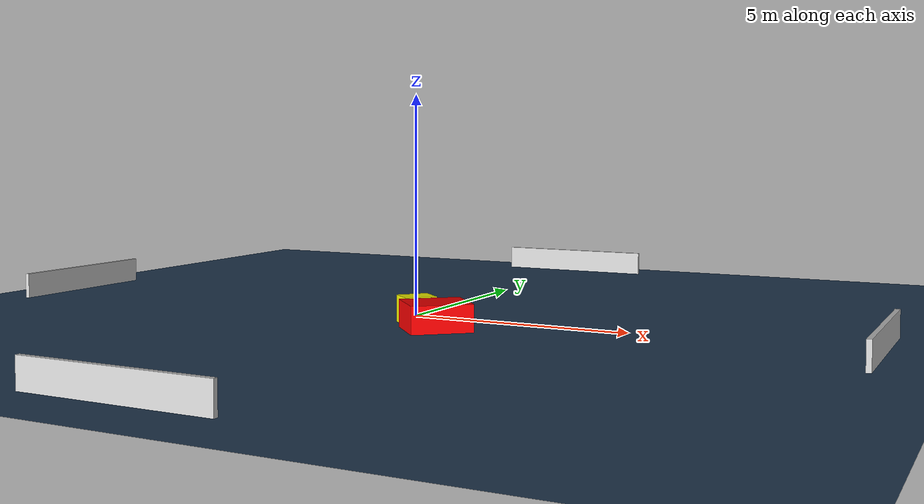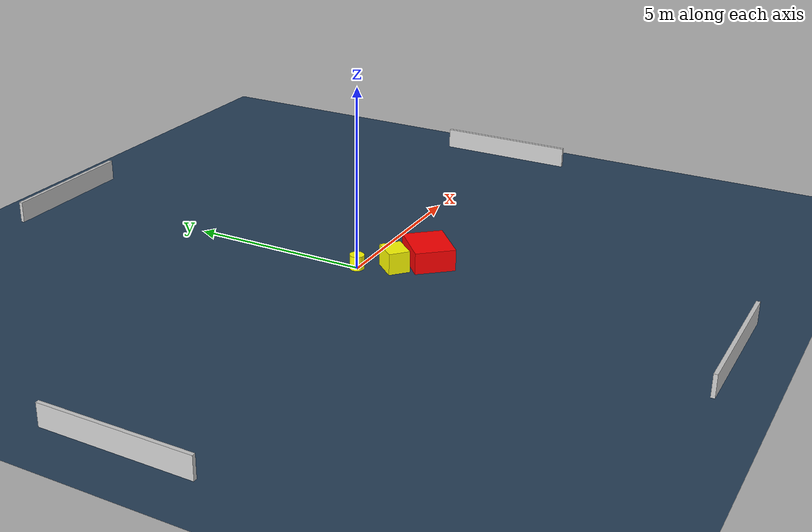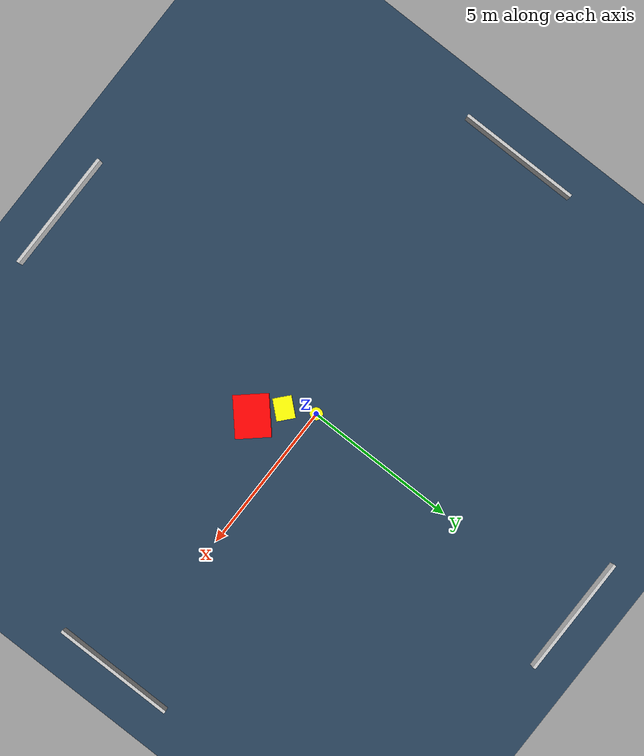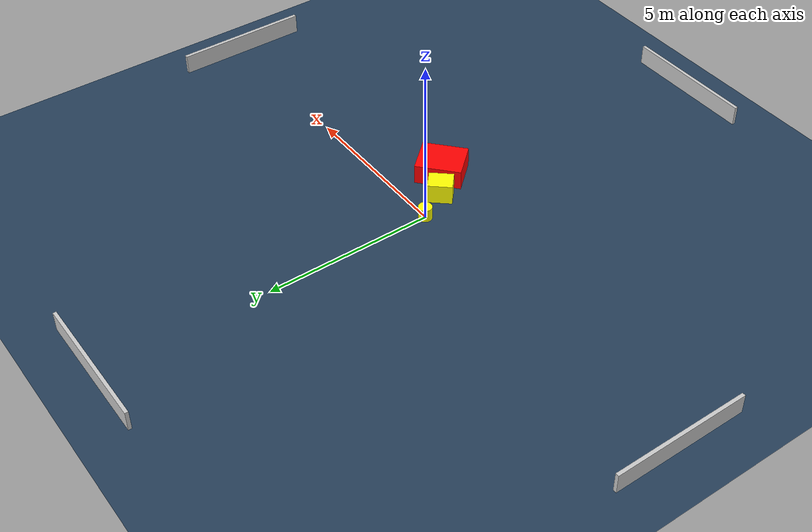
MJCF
<?xml version="1.0" ?>
<mujoco model="generated_environment">
  <option timestep="0.01" integrator="RK4" cone="elliptic"/>
  <default>
    <geom density="1"/>
  </default>
  <asset>
    <texture builtin="gradient" height="3072" name="skybox" rgb1="0.3 0.5 0.7" rgb2="0 0 0" type="skybox" width="512"/>
    <texture builtin="checker" height="300" name="groundplane" rgb1="0.2 0.3 0.4" rgb2="0.1 0.2 0.3" type="2d" width="300"/>
    <material name="groundplane" reflectance="0.2" texrepeat="5 5" texture="groundplane"/>
  </asset>
  <worldbody>
    <light dir="0 0 -1" directional="true" pos="0 0 1.5"/>
    <geom condim="3" friction="0.5 0.005 0.001" material="groundplane" name="floor" pos="0 0 0" size="0 0 0.05" type="plane"/>
    <body name="walls">
      <geom name="wall_1" condim="4" pos="-10.0 0.0 0.3" rgba="0.800000011920929 0.800000011920929 0.800000011920929 1.0" size="0.05 2.0 0.3" type="box"/>
      <geom name="wall_2" condim="4" pos="10.0 0.0 0.3" rgba="0.800000011920929 0.800000011920929 0.800000011920929 1.0" size="0.05 2.0 0.3" type="box"/>
      <geom name="wall_3" condim="4" pos="0.0 -10.0 0.3" rgba="0.800000011920929 0.800000011920929 0.800000011920929 1.0" size="2.0 0.05 0.3" type="box"/>
      <geom name="wall_4" condim="4" pos="0.0 10.0 0.3" rgba="0.800000011920929 0.800000011920929 0.800000011920929 1.0" size="2.0 0.05 0.3" type="box"/>
    </body>
    <body name="robot">
      <joint name="joint_x" type="slide" pos="0 0 0" axis="1 0 0"/>
      <joint name="joint_y" type="slide" pos="0 0 0" axis="0 1 0"/>
      <geom name="robot" type="cylinder" pos="0.0 0.0 0.2" size="0.2 0.2 0.0" mass="5.0" friction="1.0 0.005 0.0001" condim="4" rgba="1.0 1.0 0.0 1.0"/>
    </body>
    <body name="obstacle_1_movable">
      <geom name="obstacle_1_movable" condim="4" pos="0.47928733555609937 -0.8771642878839484 0.3" euler="0 0 48.665277821577774" friction="0.0 0.005 0.001" rgba="1.0 1.0 0.0 1.0" size="0.35706061719015314 0.29597124291505944 0.3" type="box" mass="0.1"/>
      <joint type="free"/>
    </body>
    <body name="obstacle_2_static">
      <geom name="obstacle_2_static" condim="4" pos="1.2700773850401599 -1.496889366907327 0.3" euler="0 0 221.62716110548337" friction="0.0 0.005 0.001" rgba="1.0 0.0 0.0 1.0" size="0.6735863175299218 0.5577242750797453 0.3" type="box"/>
    </body>
  </worldbody>
  <actuator>
    <motor name="actuator_x" joint="joint_x" gear="1" ctrlrange="-1 1"/>
    <motor name="actuator_y" joint="joint_y" gear="1" ctrlrange="-1 1"/>
  </actuator>
</mujoco>
